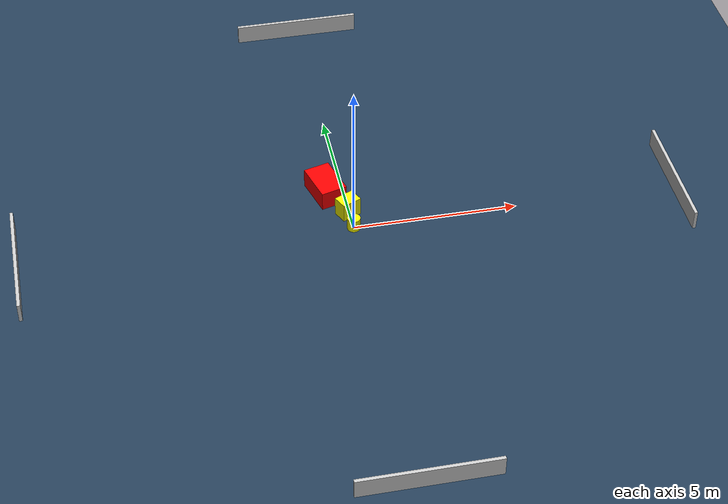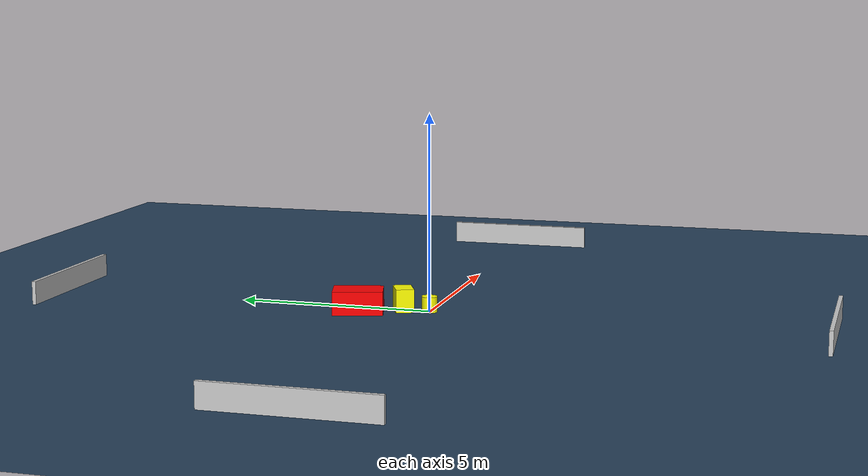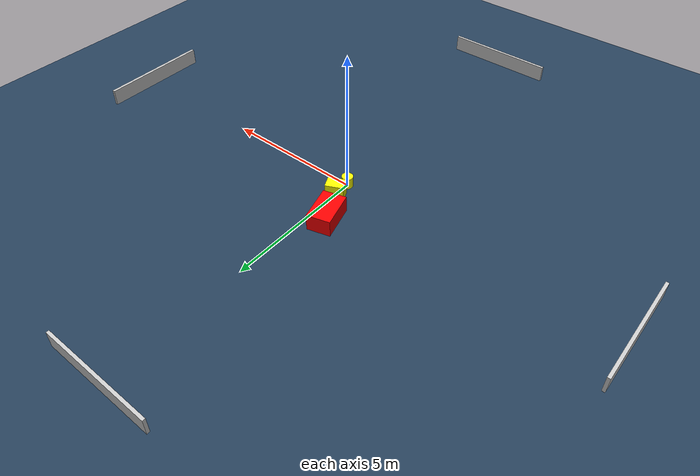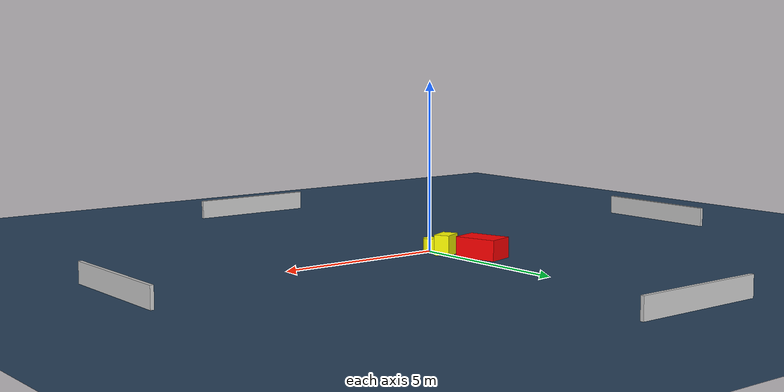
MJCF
<?xml version="1.0" ?>
<mujoco model="generated_environment">
  <option timestep="0.01" integrator="RK4" cone="elliptic"/>
  <default>
    <geom density="1"/>
  </default>
  <asset>
    <texture builtin="gradient" height="3072" name="skybox" rgb1="0.3 0.5 0.7" rgb2="0 0 0" type="skybox" width="512"/>
    <texture builtin="checker" height="300" name="groundplane" rgb1="0.2 0.3 0.4" rgb2="0.1 0.2 0.3" type="2d" width="300"/>
    <material name="groundplane" reflectance="0.2" texrepeat="5 5" texture="groundplane"/>
  </asset>
  <worldbody>
    <light dir="0 0 -1" directional="true" pos="0 0 1.5"/>
    <geom condim="3" friction="0.5 0.005 0.001" material="groundplane" name="floor" pos="0 0 0" size="0 0 0.05" type="plane"/>
    <body name="walls">
      <geom name="wall_1" condim="4" pos="-10.0 0.0 0.3" rgba="0.800000011920929 0.800000011920929 0.800000011920929 1.0" size="0.05 2.0 0.3" type="box"/>
      <geom name="wall_2" condim="4" pos="10.0 0.0 0.3" rgba="0.800000011920929 0.800000011920929 0.800000011920929 1.0" size="0.05 2.0 0.3" type="box"/>
      <geom name="wall_3" condim="4" pos="0.0 -10.0 0.3" rgba="0.800000011920929 0.800000011920929 0.800000011920929 1.0" size="2.0 0.05 0.3" type="box"/>
      <geom name="wall_4" condim="4" pos="0.0 10.0 0.3" rgba="0.800000011920929 0.800000011920929 0.800000011920929 1.0" size="2.0 0.05 0.3" type="box"/>
    </body>
    <body name="robot">
      <joint name="joint_x" type="slide" pos="0 0 0" axis="1 0 0"/>
      <joint name="joint_y" type="slide" pos="0 0 0" axis="0 1 0"/>
      <geom name="robot" type="cylinder" pos="0.0 0.0 0.2" size="0.2 0.2 0.0" mass="5.0" friction="1.0 0.005 0.0001" condim="4" rgba="1.0 1.0 0.0 1.0"/>
    </body>
    <body name="obstacle_1_movable">
      <geom name="obstacle_1_movable" condim="4" pos="-0.04742710092438929 0.6720618902338659 0.3" euler="0 0 295.0377865773276" friction="0.0 0.005 0.001" rgba="1.0 1.0 0.0 1.0" size="0.23010555233536717 0.30939743031312966 0.3" type="box" mass="0.1"/>
      <joint type="free"/>
    </body>
    <body name="obstacle_2_static">
      <geom name="obstacle_2_static" condim="4" pos="-0.54644584371972 1.7096897703237495 0.3" euler="0 0 105.55112400125766" friction="0.0 0.005 0.001" rgba="1.0 0.0 0.0 1.0" size="0.6351161055422913 0.40829599959962354 0.3" type="box"/>
    </body>
  </worldbody>
  <actuator>
    <motor name="actuator_x" joint="joint_x" gear="1" ctrlrange="-1 1"/>
    <motor name="actuator_y" joint="joint_y" gear="1" ctrlrange="-1 1"/>
  </actuator>
</mujoco>
